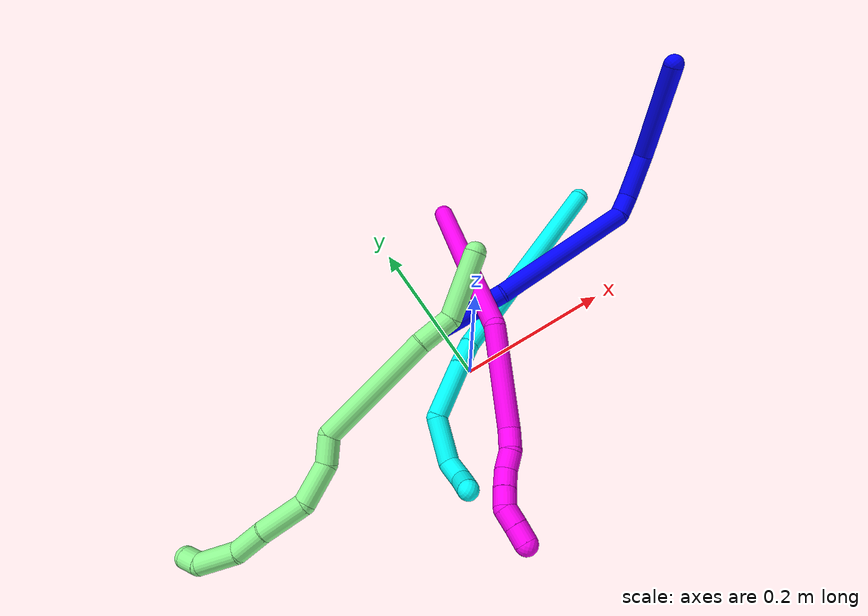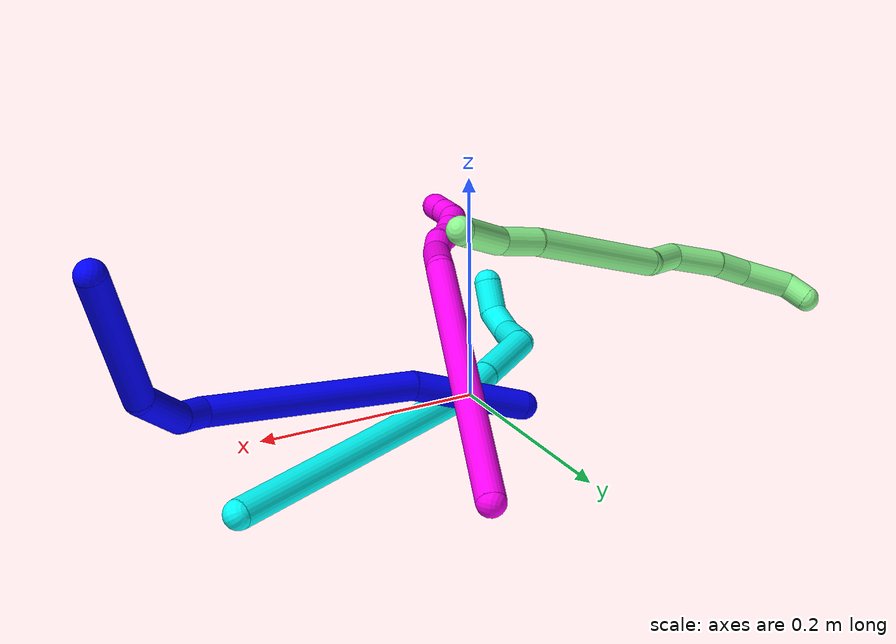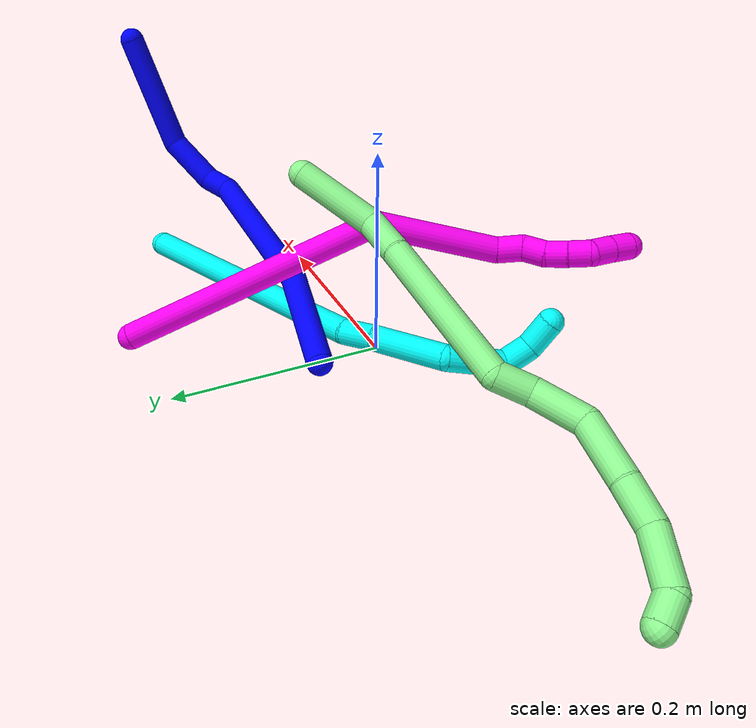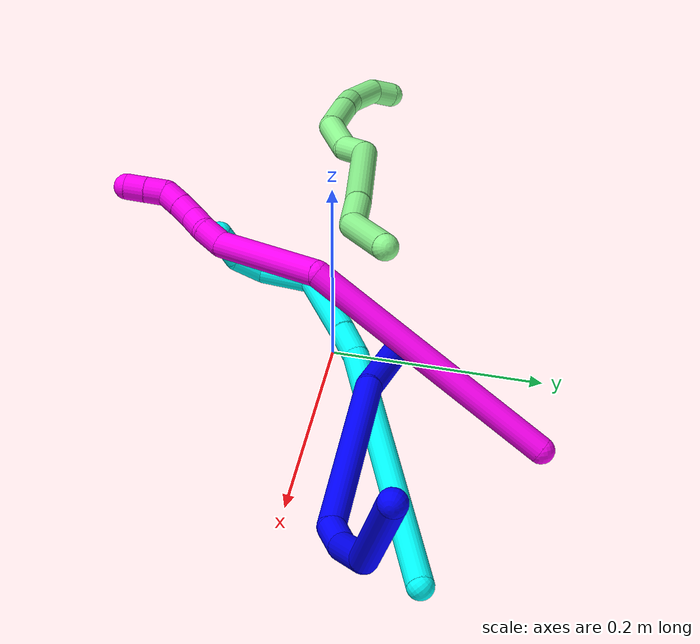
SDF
<sdf version="1.7">
 <world name="default">
  <model name="1">
   <static>0</static>
   <link name="1">
    <collision name="collision-cylinder-e_1_1_4">
     <pose>0.001693 -0.005132 0.052135 0.098112 0.032298 0.001586</pose>
     <geometry><cylinder><radius>0.0125</radius><length>0.104828</length></cylinder></geometry>
     <surface>
      <friction><ode><mu>1.16</mu><mu2>1.16</mu2><slip1>0</slip1><slip2>0</slip2></ode></friction>
      <contact><ode><kp>1e+06</kp><kd>1</kd><max_vel>0</max_vel><min_depth>0.001</min_depth></ode></contact>
     </surface>
    </collision>
    <visual name="visual-cylinder-e_1_1_4">
     <pose>0.001693 -0.005132 0.052135 0.098112 0.032298 0.001586</pose>
     <geometry><cylinder><radius>0.0125</radius><length>0.104828</length></cylinder></geometry>
     <material><ambient>0 0 1 1</ambient></material>
    </visual>
    <collision name="collision-cylinder-e_2_4_5">
     <pose>0.027674 -0.004273 0.194842 -0.066037 0.26146 -0.008686</pose>
     <geometry><cylinder><radius>0.0125</radius><length>0.187927</length></cylinder></geometry>
     <surface>
      <friction><ode><mu>1.16</mu><mu2>1.16</mu2><slip1>0</slip1><slip2>0</slip2></ode></friction>
      <contact><ode><kp>1e+06</kp><kd>1</kd><max_vel>0</max_vel><min_depth>0.001</min_depth></ode></contact>
     </surface>
    </collision>
    <visual name="visual-cylinder-e_2_4_5">
     <pose>0.027674 -0.004273 0.194842 -0.066037 0.26146 -0.008686</pose>
     <geometry><cylinder><radius>0.0125</radius><length>0.187927</length></cylinder></geometry>
     <material><ambient>0 0 1 1</ambient></material>
    </visual>
    <collision name="collision-cylinder-e_3_5_6">
     <pose>0.053364 0.009244 0.297232 -0.567129 0.099658 -0.029064</pose>
     <geometry><cylinder><radius>0.0125</radius><length>0.028162</length></cylinder></geometry>
     <surface>
      <friction><ode><mu>1.16</mu><mu2>1.16</mu2><slip1>0</slip1><slip2>0</slip2></ode></friction>
      <contact><ode><kp>1e+06</kp><kd>1</kd><max_vel>0</max_vel><min_depth>0.001</min_depth></ode></contact>
     </surface>
    </collision>
    <visual name="visual-cylinder-e_3_5_6">
     <pose>0.053364 0.009244 0.297232 -0.567129 0.099658 -0.029064</pose>
     <geometry><cylinder><radius>0.0125</radius><length>0.028162</length></cylinder></geometry>
     <material><ambient>0 0 1 1</ambient></material>
    </visual>
    <collision name="collision-cylinder-e_4_6_7">
     <pose>0.045604 0.030173 0.332354 -0.521902 -0.328405 0.088437</pose>
     <geometry><cylinder><radius>0.0125</radius><length>0.056804</length></cylinder></geometry>
     <surface>
      <friction><ode><mu>1.16</mu><mu2>1.16</mu2><slip1>0</slip1><slip2>0</slip2></ode></friction>
      <contact><ode><kp>1e+06</kp><kd>1</kd><max_vel>0</max_vel><min_depth>0.001</min_depth></ode></contact>
     </surface>
    </collision>
    <visual name="visual-cylinder-e_4_6_7">
     <pose>0.045604 0.030173 0.332354 -0.521902 -0.328405 0.088437</pose>
     <geometry><cylinder><radius>0.0125</radius><length>0.056804</length></cylinder></geometry>
     <material><ambient>0 0 1 1</ambient></material>
    </visual>
    <collision name="collision-cylinder-e_5_7_2">
     <pose>-0.010068 0.058386 0.392474 -0.382494 -0.864465 0.178165</pose>
     <geometry><cylinder><radius>0.0125</radius><length>0.122279</length></cylinder></geometry>
     <surface>
      <friction><ode><mu>1.16</mu><mu2>1.16</mu2><slip1>0</slip1><slip2>0</slip2></ode></friction>
      <contact><ode><kp>1e+06</kp><kd>1</kd><max_vel>0</max_vel><min_depth>0.001</min_depth></ode></contact>
     </surface>
    </collision>
    <visual name="visual-cylinder-e_5_7_2">
     <pose>-0.010068 0.058386 0.392474 -0.382494 -0.864465 0.178165</pose>
     <geometry><cylinder><radius>0.0125</radius><length>0.122279</length></cylinder></geometry>
     <material><ambient>0 0 1 1</ambient></material>
    </visual>
    <collision name="collision-sphere-2">
     <pose>-0.05658 0.073197 0.429289 0 -0 0</pose>
     <geometry><sphere><radius>0.0125</radius></sphere></geometry>
     <surface>
      <friction><ode><mu>1.16</mu><mu2>1.16</mu2><slip1>0</slip1><slip2>0</slip2></ode></friction>
      <contact><ode><kp>1e+06</kp><kd>1</kd><max_vel>0</max_vel><min_depth>0.001</min_depth></ode></contact>
     </surface>
    </collision>
    <visual name="visual-sphere-2">
     <pose>-0.05658 0.073197 0.429289 0 -0 0</pose>
     <geometry><sphere><radius>0.0125</radius></sphere></geometry>
     <material><ambient>0 0 1 1</ambient></material>
    </visual>
    <collision name="collision-sphere-7">
     <pose>0.036443 0.043576 0.355659 0 -0 0</pose>
     <geometry><sphere><radius>0.0125</radius></sphere></geometry>
     <surface>
      <friction><ode><mu>1.16</mu><mu2>1.16</mu2><slip1>0</slip1><slip2>0</slip2></ode></friction>
      <contact><ode><kp>1e+06</kp><kd>1</kd><max_vel>0</max_vel><min_depth>0.001</min_depth></ode></contact>
     </surface>
    </collision>
    <visual name="visual-sphere-7">
     <pose>0.036443 0.043576 0.355659 0 -0 0</pose>
     <geometry><sphere><radius>0.0125</radius></sphere></geometry>
     <material><ambient>0 0 1 1</ambient></material>
    </visual>
    <collision name="collision-sphere-6">
     <pose>0.054765 0.01677 0.309049 0 -0 0</pose>
     <geometry><sphere><radius>0.0125</radius></sphere></geometry>
     <surface>
      <friction><ode><mu>1.16</mu><mu2>1.16</mu2><slip1>0</slip1><slip2>0</slip2></ode></friction>
      <contact><ode><kp>1e+06</kp><kd>1</kd><max_vel>0</max_vel><min_depth>0.001</min_depth></ode></contact>
     </surface>
    </collision>
    <visual name="visual-sphere-6">
     <pose>0.054765 0.01677 0.309049 0 -0 0</pose>
     <geometry><sphere><radius>0.0125</radius></sphere></geometry>
     <material><ambient>0 0 1 1</ambient></material>
    </visual>
    <collision name="collision-sphere-5">
     <pose>0.051963 0.001717 0.285414 0 -0 0</pose>
     <geometry><sphere><radius>0.0125</radius></sphere></geometry>
     <surface>
      <friction><ode><mu>1.16</mu><mu2>1.16</mu2><slip1>0</slip1><slip2>0</slip2></ode></friction>
      <contact><ode><kp>1e+06</kp><kd>1</kd><max_vel>0</max_vel><min_depth>0.001</min_depth></ode></contact>
     </surface>
    </collision>
    <visual name="visual-sphere-5">
     <pose>0.051963 0.001717 0.285414 0 -0 0</pose>
     <geometry><sphere><radius>0.0125</radius></sphere></geometry>
     <material><ambient>0 0 1 1</ambient></material>
    </visual>
    <collision name="collision-sphere-1">
     <geometry><sphere><radius>0.0125</radius></sphere></geometry>
     <surface>
      <friction><ode><mu>1.16</mu><mu2>1.16</mu2><slip1>0</slip1><slip2>0</slip2></ode></friction>
      <contact><ode><kp>1e+06</kp><kd>1</kd><max_vel>0</max_vel><min_depth>0.001</min_depth></ode></contact>
     </surface>
    </collision>
    <visual name="visual-sphere-1">
     <geometry><sphere><radius>0.0125</radius></sphere></geometry>
     <material><ambient>0 0 1 1</ambient></material>
    </visual>
    <collision name="collision-sphere-4">
     <pose>0.003385 -0.010263 0.10427 0 -0 0</pose>
     <geometry><sphere><radius>0.0125</radius></sphere></geometry>
     <surface>
      <friction><ode><mu>1.16</mu><mu2>1.16</mu2><slip1>0</slip1><slip2>0</slip2></ode></friction>
      <contact><ode><kp>1e+06</kp><kd>1</kd><max_vel>0</max_vel><min_depth>0.001</min_depth></ode></contact>
     </surface>
    </collision>
    <visual name="visual-sphere-4">
     <pose>0.003385 -0.010263 0.10427 0 -0 0</pose>
     <geometry><sphere><radius>0.0125</radius></sphere></geometry>
     <material><ambient>0 0 1 1</ambient></material>
    </visual>
    <inertial>
     <pose>0.016481 0.015545 0.234644 0 -0 0</pose>
     <mass>0.5</mass>
     <inertia>
      <ixx>0.000772</ixx>
      <ixy>0</ixy>
      <ixz>0</ixz>
      <iyy>0.000849</iyy>
      <iyz>0</iyz>
      <izz>-6.3e-05</izz>
     </inertia>
    </inertial>
   </link>
   <pose>-0.016242 0.064601 0.011484 -0.009917 1.20515 -0.042322</pose>
  </model>
  <model name="3">
   <static>0</static>
   <link name="3">
    <collision name="collision-cylinder-e_1_1_4">
     <pose>-0.116861 -0.06996 0.028282 1.18663 -0.997431 -0.703978</pose>
     <geometry><cylinder><radius>0.0125</radius><length>0.278215</length></cylinder></geometry>
     <surface>
      <friction><ode><mu>1.16</mu><mu2>1.16</mu2><slip1>0</slip1><slip2>0</slip2></ode></friction>
      <contact><ode><kp>1e+06</kp><kd>1</kd><max_vel>0</max_vel><min_depth>0.001</min_depth></ode></contact>
     </surface>
    </collision>
    <visual name="visual-cylinder-e_1_1_4">
     <pose>-0.116861 -0.06996 0.028282 1.18663 -0.997431 -0.703978</pose>
     <geometry><cylinder><radius>0.0125</radius><length>0.278215</length></cylinder></geometry>
     <material><ambient>0.003922 1 0.996078 1</ambient></material>
    </visual>
    <collision name="collision-cylinder-e_2_4_5">
     <pose>-0.245951 -0.150933 0.057922 1.44806 -0.833896 -0.746554</pose>
     <geometry><cylinder><radius>0.0125</radius><length>0.033025</length></cylinder></geometry>
     <surface>
      <friction><ode><mu>1.16</mu><mu2>1.16</mu2><slip1>0</slip1><slip2>0</slip2></ode></friction>
      <contact><ode><kp>1e+06</kp><kd>1</kd><max_vel>0</max_vel><min_depth>0.001</min_depth></ode></contact>
     </surface>
    </collision>
    <visual name="visual-cylinder-e_2_4_5">
     <pose>-0.245951 -0.150933 0.057922 1.44806 -0.833896 -0.746554</pose>
     <geometry><cylinder><radius>0.0125</radius><length>0.033025</length></cylinder></geometry>
     <material><ambient>0.003922 1 0.996078 1</ambient></material>
    </visual>
    <collision name="collision-cylinder-e_3_5_6">
     <pose>-0.286999 -0.185154 0.0606 1.51399 -0.89206 -0.848617</pose>
     <geometry><cylinder><radius>0.0125</radius><length>0.074051</length></cylinder></geometry>
     <surface>
      <friction><ode><mu>1.16</mu><mu2>1.16</mu2><slip1>0</slip1><slip2>0</slip2></ode></friction>
      <contact><ode><kp>1e+06</kp><kd>1</kd><max_vel>0</max_vel><min_depth>0.001</min_depth></ode></contact>
     </surface>
    </collision>
    <visual name="visual-cylinder-e_3_5_6">
     <pose>-0.286999 -0.185154 0.0606 1.51399 -0.89206 -0.848617</pose>
     <geometry><cylinder><radius>0.0125</radius><length>0.074051</length></cylinder></geometry>
     <material><ambient>0.003922 1 0.996078 1</ambient></material>
    </visual>
    <collision name="collision-cylinder-e_4_6_7">
     <pose>-0.330654 -0.224596 0.04533 2.367 -0.568701 -1.24347</pose>
     <geometry><cylinder><radius>0.0125</radius><length>0.055096</length></cylinder></geometry>
     <surface>
      <friction><ode><mu>1.16</mu><mu2>1.16</mu2><slip1>0</slip1><slip2>0</slip2></ode></friction>
      <contact><ode><kp>1e+06</kp><kd>1</kd><max_vel>0</max_vel><min_depth>0.001</min_depth></ode></contact>
     </surface>
    </collision>
    <visual name="visual-cylinder-e_4_6_7">
     <pose>-0.330654 -0.224596 0.04533 2.367 -0.568701 -1.24347</pose>
     <geometry><cylinder><radius>0.0125</radius><length>0.055096</length></cylinder></geometry>
     <material><ambient>0.003922 1 0.996078 1</ambient></material>
    </visual>
    <collision name="collision-cylinder-e_5_7_8">
     <pose>-0.345427 -0.253949 0.02257 2.01042 0.004339 0.006835</pose>
     <geometry><cylinder><radius>0.0125</radius><length>0.028992</length></cylinder></geometry>
     <surface>
      <friction><ode><mu>1.16</mu><mu2>1.16</mu2><slip1>0</slip1><slip2>0</slip2></ode></friction>
      <contact><ode><kp>1e+06</kp><kd>1</kd><max_vel>0</max_vel><min_depth>0.001</min_depth></ode></contact>
     </surface>
    </collision>
    <visual name="visual-cylinder-e_5_7_8">
     <pose>-0.345427 -0.253949 0.02257 2.01042 0.004339 0.006835</pose>
     <geometry><cylinder><radius>0.0125</radius><length>0.028992</length></cylinder></geometry>
     <material><ambient>0.003922 1 0.996078 1</ambient></material>
    </visual>
    <collision name="collision-cylinder-e_6_8_2">
     <pose>-0.342583 -0.282064 0.017723 1.48285 0.182646 0.167325</pose>
     <geometry><cylinder><radius>0.0125</radius><length>0.030621</length></cylinder></geometry>
     <surface>
      <friction><ode><mu>1.16</mu><mu2>1.16</mu2><slip1>0</slip1><slip2>0</slip2></ode></friction>
      <contact><ode><kp>1e+06</kp><kd>1</kd><max_vel>0</max_vel><min_depth>0.001</min_depth></ode></contact>
     </surface>
    </collision>
    <visual name="visual-cylinder-e_6_8_2">
     <pose>-0.342583 -0.282064 0.017723 1.48285 0.182646 0.167325</pose>
     <geometry><cylinder><radius>0.0125</radius><length>0.030621</length></cylinder></geometry>
     <material><ambient>0.003922 1 0.996078 1</ambient></material>
    </visual>
    <collision name="collision-sphere-2">
     <pose>-0.339803 -0.297061 0.019046 0 -0 0</pose>
     <geometry><sphere><radius>0.0125</radius></sphere></geometry>
     <surface>
      <friction><ode><mu>1.16</mu><mu2>1.16</mu2><slip1>0</slip1><slip2>0</slip2></ode></friction>
      <contact><ode><kp>1e+06</kp><kd>1</kd><max_vel>0</max_vel><min_depth>0.001</min_depth></ode></contact>
     </surface>
    </collision>
    <visual name="visual-sphere-2">
     <pose>-0.339803 -0.297061 0.019046 0 -0 0</pose>
     <geometry><sphere><radius>0.0125</radius></sphere></geometry>
     <material><ambient>0.003922 1 0.996078 1</ambient></material>
    </visual>
    <collision name="collision-sphere-4">
     <pose>-0.233723 -0.13992 0.056563 0 -0 0</pose>
     <geometry><sphere><radius>0.0125</radius></sphere></geometry>
     <surface>
      <friction><ode><mu>1.16</mu><mu2>1.16</mu2><slip1>0</slip1><slip2>0</slip2></ode></friction>
      <contact><ode><kp>1e+06</kp><kd>1</kd><max_vel>0</max_vel><min_depth>0.001</min_depth></ode></contact>
     </surface>
    </collision>
    <visual name="visual-sphere-4">
     <pose>-0.233723 -0.13992 0.056563 0 -0 0</pose>
     <geometry><sphere><radius>0.0125</radius></sphere></geometry>
     <material><ambient>0.003922 1 0.996078 1</ambient></material>
    </visual>
    <collision name="collision-sphere-1">
     <geometry><sphere><radius>0.0125</radius></sphere></geometry>
     <surface>
      <friction><ode><mu>1.16</mu><mu2>1.16</mu2><slip1>0</slip1><slip2>0</slip2></ode></friction>
      <contact><ode><kp>1e+06</kp><kd>1</kd><max_vel>0</max_vel><min_depth>0.001</min_depth></ode></contact>
     </surface>
    </collision>
    <visual name="visual-sphere-1">
     <geometry><sphere><radius>0.0125</radius></sphere></geometry>
     <material><ambient>0.003922 1 0.996078 1</ambient></material>
    </visual>
    <collision name="collision-sphere-8">
     <pose>-0.345364 -0.267067 0.016401 0 -0 0</pose>
     <geometry><sphere><radius>0.0125</radius></sphere></geometry>
     <surface>
      <friction><ode><mu>1.16</mu><mu2>1.16</mu2><slip1>0</slip1><slip2>0</slip2></ode></friction>
      <contact><ode><kp>1e+06</kp><kd>1</kd><max_vel>0</max_vel><min_depth>0.001</min_depth></ode></contact>
     </surface>
    </collision>
    <visual name="visual-sphere-8">
     <pose>-0.345364 -0.267067 0.016401 0 -0 0</pose>
     <geometry><sphere><radius>0.0125</radius></sphere></geometry>
     <material><ambient>0.003922 1 0.996078 1</ambient></material>
    </visual>
    <collision name="collision-sphere-5">
     <pose>-0.25818 -0.161946 0.05928 0 -0 0</pose>
     <geometry><sphere><radius>0.0125</radius></sphere></geometry>
     <surface>
      <friction><ode><mu>1.16</mu><mu2>1.16</mu2><slip1>0</slip1><slip2>0</slip2></ode></friction>
      <contact><ode><kp>1e+06</kp><kd>1</kd><max_vel>0</max_vel><min_depth>0.001</min_depth></ode></contact>
     </surface>
    </collision>
    <visual name="visual-sphere-5">
     <pose>-0.25818 -0.161946 0.05928 0 -0 0</pose>
     <geometry><sphere><radius>0.0125</radius></sphere></geometry>
     <material><ambient>0.003922 1 0.996078 1</ambient></material>
    </visual>
    <collision name="collision-sphere-6">
     <pose>-0.315819 -0.208361 0.06192 0 -0 0</pose>
     <geometry><sphere><radius>0.0125</radius></sphere></geometry>
     <surface>
      <friction><ode><mu>1.16</mu><mu2>1.16</mu2><slip1>0</slip1><slip2>0</slip2></ode></friction>
      <contact><ode><kp>1e+06</kp><kd>1</kd><max_vel>0</max_vel><min_depth>0.001</min_depth></ode></contact>
     </surface>
    </collision>
    <visual name="visual-sphere-6">
     <pose>-0.315819 -0.208361 0.06192 0 -0 0</pose>
     <geometry><sphere><radius>0.0125</radius></sphere></geometry>
     <material><ambient>0.003922 1 0.996078 1</ambient></material>
    </visual>
    <collision name="collision-sphere-7">
     <pose>-0.34549 -0.240831 0.02874 0 -0 0</pose>
     <geometry><sphere><radius>0.0125</radius></sphere></geometry>
     <surface>
      <friction><ode><mu>1.16</mu><mu2>1.16</mu2><slip1>0</slip1><slip2>0</slip2></ode></friction>
      <contact><ode><kp>1e+06</kp><kd>1</kd><max_vel>0</max_vel><min_depth>0.001</min_depth></ode></contact>
     </surface>
    </collision>
    <visual name="visual-sphere-7">
     <pose>-0.34549 -0.240831 0.02874 0 -0 0</pose>
     <geometry><sphere><radius>0.0125</radius></sphere></geometry>
     <material><ambient>0.003922 1 0.996078 1</ambient></material>
    </visual>
    <inertial>
     <pose>-0.201221 -0.133067 0.035927 0 -0 0</pose>
     <mass>0.5</mass>
     <inertia>
      <ixx>8.3e-05</ixx>
      <ixy>0</ixy>
      <ixz>0</ixz>
      <iyy>0.000764</iyy>
      <iyz>0</iyz>
      <izz>0.002508</izz>
     </inertia>
    </inertial>
   </link>
   <pose>0.27206 0.134457 0.0115 -0.901314 -0.539129 0.248104</pose>
  </model>
  <model name="10">
   <static>0</static>
   <link name="10">
    <collision name="collision-cylinder-e_1_1_4">
     <pose>0.022661 -0.104882 -0.070084 2.15987 0.177752 0.3304</pose>
     <geometry><cylinder><radius>0.0125</radius><length>0.256325</length></cylinder></geometry>
     <surface>
      <friction><ode><mu>1.16</mu><mu2>1.16</mu2><slip1>0</slip1><slip2>0</slip2></ode></friction>
      <contact><ode><kp>1e+06</kp><kd>1</kd><max_vel>0</max_vel><min_depth>0.001</min_depth></ode></contact>
     </surface>
    </collision>
    <visual name="visual-cylinder-e_1_1_4">
     <pose>0.022661 -0.104882 -0.070084 2.15987 0.177752 0.3304</pose>
     <geometry><cylinder><radius>0.0125</radius><length>0.256325</length></cylinder></geometry>
     <material><ambient>1 0 0.964706 1</ambient></material>
    </visual>
    <collision name="collision-cylinder-e_2_4_5">
     <pose>0.017999 -0.25435 -0.165644 2.08992 -0.488993 -0.812026</pose>
     <geometry><cylinder><radius>0.0125</radius><length>0.116335</length></cylinder></geometry>
     <surface>
      <friction><ode><mu>1.16</mu><mu2>1.16</mu2><slip1>0</slip1><slip2>0</slip2></ode></friction>
      <contact><ode><kp>1e+06</kp><kd>1</kd><max_vel>0</max_vel><min_depth>0.001</min_depth></ode></contact>
     </surface>
    </collision>
    <visual name="visual-cylinder-e_2_4_5">
     <pose>0.017999 -0.25435 -0.165644 2.08992 -0.488993 -0.812026</pose>
     <geometry><cylinder><radius>0.0125</radius><length>0.116335</length></cylinder></geometry>
     <material><ambient>1 0 0.964706 1</ambient></material>
    </visual>
    <collision name="collision-cylinder-e_3_5_6">
     <pose>-0.010672 -0.310363 -0.195649 1.94815 -0.109229 -0.160603</pose>
     <geometry><cylinder><radius>0.0125</radius><length>0.024732</length></cylinder></geometry>
     <surface>
      <friction><ode><mu>1.16</mu><mu2>1.16</mu2><slip1>0</slip1><slip2>0</slip2></ode></friction>
      <contact><ode><kp>1e+06</kp><kd>1</kd><max_vel>0</max_vel><min_depth>0.001</min_depth></ode></contact>
     </surface>
    </collision>
    <visual name="visual-cylinder-e_3_5_6">
     <pose>-0.010672 -0.310363 -0.195649 1.94815 -0.109229 -0.160603</pose>
     <geometry><cylinder><radius>0.0125</radius><length>0.024732</length></cylinder></geometry>
     <material><ambient>1 0 0.964706 1</ambient></material>
    </visual>
    <collision name="collision-cylinder-e_4_6_7">
     <pose>-0.015802 -0.331783 -0.201143 1.66703 -0.36025 -0.395799</pose>
     <geometry><cylinder><radius>0.0125</radius><length>0.021456</length></cylinder></geometry>
     <surface>
      <friction><ode><mu>1.16</mu><mu2>1.16</mu2><slip1>0</slip1><slip2>0</slip2></ode></friction>
      <contact><ode><kp>1e+06</kp><kd>1</kd><max_vel>0</max_vel><min_depth>0.001</min_depth></ode></contact>
     </surface>
    </collision>
    <visual name="visual-cylinder-e_4_6_7">
     <pose>-0.015802 -0.331783 -0.201143 1.66703 -0.36025 -0.395799</pose>
     <geometry><cylinder><radius>0.0125</radius><length>0.021456</length></cylinder></geometry>
     <material><ambient>1 0 0.964706 1</ambient></material>
    </visual>
    <collision name="collision-cylinder-e_5_7_8">
     <pose>-0.021042 -0.351479 -0.204744 1.83611 -0.144005 -0.188125</pose>
     <geometry><cylinder><radius>0.0125</radius><length>0.020319</length></cylinder></geometry>
     <surface>
      <friction><ode><mu>1.16</mu><mu2>1.16</mu2><slip1>0</slip1><slip2>0</slip2></ode></friction>
      <contact><ode><kp>1e+06</kp><kd>1</kd><max_vel>0</max_vel><min_depth>0.001</min_depth></ode></contact>
     </surface>
    </collision>
    <visual name="visual-cylinder-e_5_7_8">
     <pose>-0.021042 -0.351479 -0.204744 1.83611 -0.144005 -0.188125</pose>
     <geometry><cylinder><radius>0.0125</radius><length>0.020319</length></cylinder></geometry>
     <material><ambient>1 0 0.964706 1</ambient></material>
    </visual>
    <collision name="collision-cylinder-e_6_8_9">
     <pose>-0.023878 -0.370849 -0.210796 1.91034 -0.133619 -0.188629</pose>
     <geometry><cylinder><radius>0.0125</radius><length>0.02069</length></cylinder></geometry>
     <surface>
      <friction><ode><mu>1.16</mu><mu2>1.16</mu2><slip1>0</slip1><slip2>0</slip2></ode></friction>
      <contact><ode><kp>1e+06</kp><kd>1</kd><max_vel>0</max_vel><min_depth>0.001</min_depth></ode></contact>
     </surface>
    </collision>
    <visual name="visual-cylinder-e_6_8_9">
     <pose>-0.023878 -0.370849 -0.210796 1.91034 -0.133619 -0.188629</pose>
     <geometry><cylinder><radius>0.0125</radius><length>0.02069</length></cylinder></geometry>
     <material><ambient>1 0 0.964706 1</ambient></material>
    </visual>
    <collision name="collision-cylinder-e_7_9_10">
     <pose>-0.027389 -0.386415 -0.222049 2.49656 -0.214075 -0.622172</pose>
     <geometry><cylinder><radius>0.0125</radius><length>0.020078</length></cylinder></geometry>
     <surface>
      <friction><ode><mu>1.16</mu><mu2>1.16</mu2><slip1>0</slip1><slip2>0</slip2></ode></friction>
      <contact><ode><kp>1e+06</kp><kd>1</kd><max_vel>0</max_vel><min_depth>0.001</min_depth></ode></contact>
     </surface>
    </collision>
    <visual name="visual-cylinder-e_7_9_10">
     <pose>-0.027389 -0.386415 -0.222049 2.49656 -0.214075 -0.622172</pose>
     <geometry><cylinder><radius>0.0125</radius><length>0.020078</length></cylinder></geometry>
     <material><ambient>1 0 0.964706 1</ambient></material>
    </visual>
    <collision name="collision-cylinder-e_8_10_2">
     <pose>-0.031916 -0.398384 -0.237507 2.46872 -0.241028 -0.66669</pose>
     <geometry><cylinder><radius>0.0125</radius><length>0.020064</length></cylinder></geometry>
     <surface>
      <friction><ode><mu>1.16</mu><mu2>1.16</mu2><slip1>0</slip1><slip2>0</slip2></ode></friction>
      <contact><ode><kp>1e+06</kp><kd>1</kd><max_vel>0</max_vel><min_depth>0.001</min_depth></ode></contact>
     </surface>
    </collision>
    <visual name="visual-cylinder-e_8_10_2">
     <pose>-0.031916 -0.398384 -0.237507 2.46872 -0.241028 -0.66669</pose>
     <geometry><cylinder><radius>0.0125</radius><length>0.020064</length></cylinder></geometry>
     <material><ambient>1 0 0.964706 1</ambient></material>
    </visual>
    <collision name="collision-sphere-2">
     <pose>-0.034311 -0.404456 -0.245126 0 -0 0</pose>
     <geometry><sphere><radius>0.0125</radius></sphere></geometry>
     <surface>
      <friction><ode><mu>1.16</mu><mu2>1.16</mu2><slip1>0</slip1><slip2>0</slip2></ode></friction>
      <contact><ode><kp>1e+06</kp><kd>1</kd><max_vel>0</max_vel><min_depth>0.001</min_depth></ode></contact>
     </surface>
    </collision>
    <visual name="visual-sphere-2">
     <pose>-0.034311 -0.404456 -0.245126 0 -0 0</pose>
     <geometry><sphere><radius>0.0125</radius></sphere></geometry>
     <material><ambient>1 0 0.964706 1</ambient></material>
    </visual>
    <collision name="collision-sphere-10">
     <pose>-0.029522 -0.392313 -0.229888 0 -0 0</pose>
     <geometry><sphere><radius>0.0125</radius></sphere></geometry>
     <surface>
      <friction><ode><mu>1.16</mu><mu2>1.16</mu2><slip1>0</slip1><slip2>0</slip2></ode></friction>
      <contact><ode><kp>1e+06</kp><kd>1</kd><max_vel>0</max_vel><min_depth>0.001</min_depth></ode></contact>
     </surface>
    </collision>
    <visual name="visual-sphere-10">
     <pose>-0.029522 -0.392313 -0.229888 0 -0 0</pose>
     <geometry><sphere><radius>0.0125</radius></sphere></geometry>
     <material><ambient>1 0 0.964706 1</ambient></material>
    </visual>
    <collision name="collision-sphere-9">
     <pose>-0.025256 -0.380517 -0.21421 0 -0 0</pose>
     <geometry><sphere><radius>0.0125</radius></sphere></geometry>
     <surface>
      <friction><ode><mu>1.16</mu><mu2>1.16</mu2><slip1>0</slip1><slip2>0</slip2></ode></friction>
      <contact><ode><kp>1e+06</kp><kd>1</kd><max_vel>0</max_vel><min_depth>0.001</min_depth></ode></contact>
     </surface>
    </collision>
    <visual name="visual-sphere-9">
     <pose>-0.025256 -0.380517 -0.21421 0 -0 0</pose>
     <geometry><sphere><radius>0.0125</radius></sphere></geometry>
     <material><ambient>1 0 0.964706 1</ambient></material>
    </visual>
    <collision name="collision-sphere-4">
     <pose>0.045323 -0.209764 -0.140168 0 -0 0</pose>
     <geometry><sphere><radius>0.0125</radius></sphere></geometry>
     <surface>
      <friction><ode><mu>1.16</mu><mu2>1.16</mu2><slip1>0</slip1><slip2>0</slip2></ode></friction>
      <contact><ode><kp>1e+06</kp><kd>1</kd><max_vel>0</max_vel><min_depth>0.001</min_depth></ode></contact>
     </surface>
    </collision>
    <visual name="visual-sphere-4">
     <pose>0.045323 -0.209764 -0.140168 0 -0 0</pose>
     <geometry><sphere><radius>0.0125</radius></sphere></geometry>
     <material><ambient>1 0 0.964706 1</ambient></material>
    </visual>
    <collision name="collision-sphere-1">
     <geometry><sphere><radius>0.0125</radius></sphere></geometry>
     <surface>
      <friction><ode><mu>1.16</mu><mu2>1.16</mu2><slip1>0</slip1><slip2>0</slip2></ode></friction>
      <contact><ode><kp>1e+06</kp><kd>1</kd><max_vel>0</max_vel><min_depth>0.001</min_depth></ode></contact>
     </surface>
    </collision>
    <visual name="visual-sphere-1">
     <geometry><sphere><radius>0.0125</radius></sphere></geometry>
     <material><ambient>1 0 0.964706 1</ambient></material>
    </visual>
    <collision name="collision-sphere-8">
     <pose>-0.0225 -0.361182 -0.207381 0 -0 0</pose>
     <geometry><sphere><radius>0.0125</radius></sphere></geometry>
     <surface>
      <friction><ode><mu>1.16</mu><mu2>1.16</mu2><slip1>0</slip1><slip2>0</slip2></ode></friction>
      <contact><ode><kp>1e+06</kp><kd>1</kd><max_vel>0</max_vel><min_depth>0.001</min_depth></ode></contact>
     </surface>
    </collision>
    <visual name="visual-sphere-8">
     <pose>-0.0225 -0.361182 -0.207381 0 -0 0</pose>
     <geometry><sphere><radius>0.0125</radius></sphere></geometry>
     <material><ambient>1 0 0.964706 1</ambient></material>
    </visual>
    <collision name="collision-sphere-5">
     <pose>-0.009324 -0.298936 -0.19112 0 -0 0</pose>
     <geometry><sphere><radius>0.0125</radius></sphere></geometry>
     <surface>
      <friction><ode><mu>1.16</mu><mu2>1.16</mu2><slip1>0</slip1><slip2>0</slip2></ode></friction>
      <contact><ode><kp>1e+06</kp><kd>1</kd><max_vel>0</max_vel><min_depth>0.001</min_depth></ode></contact>
     </surface>
    </collision>
    <visual name="visual-sphere-5">
     <pose>-0.009324 -0.298936 -0.19112 0 -0 0</pose>
     <geometry><sphere><radius>0.0125</radius></sphere></geometry>
     <material><ambient>1 0 0.964706 1</ambient></material>
    </visual>
    <collision name="collision-sphere-6">
     <pose>-0.01202 -0.32179 -0.200179 0 -0 0</pose>
     <geometry><sphere><radius>0.0125</radius></sphere></geometry>
     <surface>
      <friction><ode><mu>1.16</mu><mu2>1.16</mu2><slip1>0</slip1><slip2>0</slip2></ode></friction>
      <contact><ode><kp>1e+06</kp><kd>1</kd><max_vel>0</max_vel><min_depth>0.001</min_depth></ode></contact>
     </surface>
    </collision>
    <visual name="visual-sphere-6">
     <pose>-0.01202 -0.32179 -0.200179 0 -0 0</pose>
     <geometry><sphere><radius>0.0125</radius></sphere></geometry>
     <material><ambient>1 0 0.964706 1</ambient></material>
    </visual>
    <collision name="collision-sphere-7">
     <pose>-0.019584 -0.341776 -0.202108 0 -0 0</pose>
     <geometry><sphere><radius>0.0125</radius></sphere></geometry>
     <surface>
      <friction><ode><mu>1.16</mu><mu2>1.16</mu2><slip1>0</slip1><slip2>0</slip2></ode></friction>
      <contact><ode><kp>1e+06</kp><kd>1</kd><max_vel>0</max_vel><min_depth>0.001</min_depth></ode></contact>
     </surface>
    </collision>
    <visual name="visual-sphere-7">
     <pose>-0.019584 -0.341776 -0.202108 0 -0 0</pose>
     <geometry><sphere><radius>0.0125</radius></sphere></geometry>
     <material><ambient>1 0 0.964706 1</ambient></material>
    </visual>
    <inertial>
     <pose>0.010375 -0.20367 -0.128269 0 -0 0</pose>
     <mass>0.5</mass>
     <inertia>
      <ixx>0.001766</ixx>
      <ixy>0</ixy>
      <ixz>0</ixz>
      <iyy>-0.000355</iyy>
      <iyz>0</iyz>
      <izz>0.001066</izz>
     </inertia>
    </inertial>
   </link>
   <pose>0.096487 0.212036 0.012299 -1.80447 -1.29711 0.865397</pose>
  </model>
  <model name="13">
   <static>0</static>
   <link name="13">
    <collision name="collision-cylinder-e_1_1_4">
     <pose>-0.006032 0.007611 0.037248 -0.201572 -0.157364 0.015947</pose>
     <geometry><cylinder><radius>0.0125</radius><length>0.076986</length></cylinder></geometry>
     <surface>
      <friction><ode><mu>1.16</mu><mu2>1.16</mu2><slip1>0</slip1><slip2>0</slip2></ode></friction>
      <contact><ode><kp>1e+06</kp><kd>1</kd><max_vel>0</max_vel><min_depth>0.001</min_depth></ode></contact>
     </surface>
    </collision>
    <visual name="visual-cylinder-e_1_1_4">
     <pose>-0.006032 0.007611 0.037248 -0.201572 -0.157364 0.015947</pose>
     <geometry><cylinder><radius>0.0125</radius><length>0.076986</length></cylinder></geometry>
     <material><ambient>0.564706 0.984314 0.572549 1</ambient></material>
    </visual>
    <collision name="collision-cylinder-e_2_4_5">
     <pose>-0.024985 0.015066 0.091106 0.009424 -0.661056 -0.003234</pose>
     <geometry><cylinder><radius>0.0125</radius><length>0.042088</length></cylinder></geometry>
     <surface>
      <friction><ode><mu>1.16</mu><mu2>1.16</mu2><slip1>0</slip1><slip2>0</slip2></ode></friction>
      <contact><ode><kp>1e+06</kp><kd>1</kd><max_vel>0</max_vel><min_depth>0.001</min_depth></ode></contact>
     </surface>
    </collision>
    <visual name="visual-cylinder-e_2_4_5">
     <pose>-0.024985 0.015066 0.091106 0.009424 -0.661056 -0.003234</pose>
     <geometry><cylinder><radius>0.0125</radius><length>0.042088</length></cylinder></geometry>
     <material><ambient>0.564706 0.984314 0.572549 1</ambient></material>
    </visual>
    <collision name="collision-cylinder-e_3_5_6">
     <pose>-0.072754 0.011473 0.168737 0.056259 -0.518221 -0.014916</pose>
     <geometry><cylinder><radius>0.0125</radius><length>0.140711</length></cylinder></geometry>
     <surface>
      <friction><ode><mu>1.16</mu><mu2>1.16</mu2><slip1>0</slip1><slip2>0</slip2></ode></friction>
      <contact><ode><kp>1e+06</kp><kd>1</kd><max_vel>0</max_vel><min_depth>0.001</min_depth></ode></contact>
     </surface>
    </collision>
    <visual name="visual-cylinder-e_3_5_6">
     <pose>-0.072754 0.011473 0.168737 0.056259 -0.518221 -0.014916</pose>
     <geometry><cylinder><radius>0.0125</radius><length>0.140711</length></cylinder></geometry>
     <material><ambient>0.564706 0.984314 0.572549 1</ambient></material>
    </visual>
    <collision name="collision-cylinder-e_4_6_7">
     <pose>-0.106751 0.014166 0.244195 -0.401481 0.054288 -0.011049</pose>
     <geometry><cylinder><radius>0.0125</radius><length>0.031415</length></cylinder></geometry>
     <surface>
      <friction><ode><mu>1.16</mu><mu2>1.16</mu2><slip1>0</slip1><slip2>0</slip2></ode></friction>
      <contact><ode><kp>1e+06</kp><kd>1</kd><max_vel>0</max_vel><min_depth>0.001</min_depth></ode></contact>
     </surface>
    </collision>
    <visual name="visual-cylinder-e_4_6_7">
     <pose>-0.106751 0.014166 0.244195 -0.401481 0.054288 -0.011049</pose>
     <geometry><cylinder><radius>0.0125</radius><length>0.031415</length></cylinder></geometry>
     <material><ambient>0.564706 0.984314 0.572549 1</ambient></material>
    </visual>
    <collision name="collision-cylinder-e_5_7_8">
     <pose>-0.114495 0.027698 0.278922 -0.349863 -0.378777 0.06773</pose>
     <geometry><cylinder><radius>0.0125</radius><length>0.046491</length></cylinder></geometry>
     <surface>
      <friction><ode><mu>1.16</mu><mu2>1.16</mu2><slip1>0</slip1><slip2>0</slip2></ode></friction>
      <contact><ode><kp>1e+06</kp><kd>1</kd><max_vel>0</max_vel><min_depth>0.001</min_depth></ode></contact>
     </surface>
    </collision>
    <visual name="visual-cylinder-e_5_7_8">
     <pose>-0.114495 0.027698 0.278922 -0.349863 -0.378777 0.06773</pose>
     <geometry><cylinder><radius>0.0125</radius><length>0.046491</length></cylinder></geometry>
     <material><ambient>0.564706 0.984314 0.572549 1</ambient></material>
    </visual>
    <collision name="collision-cylinder-e_6_8_9">
     <pose>-0.139689 0.030934 0.320085 0.197065 -0.662304 -0.067947</pose>
     <geometry><cylinder><radius>0.0125</radius><length>0.053985</length></cylinder></geometry>
     <surface>
      <friction><ode><mu>1.16</mu><mu2>1.16</mu2><slip1>0</slip1><slip2>0</slip2></ode></friction>
      <contact><ode><kp>1e+06</kp><kd>1</kd><max_vel>0</max_vel><min_depth>0.001</min_depth></ode></contact>
     </surface>
    </collision>
    <visual name="visual-cylinder-e_6_8_9">
     <pose>-0.139689 0.030934 0.320085 0.197065 -0.662304 -0.067947</pose>
     <geometry><cylinder><radius>0.0125</radius><length>0.053985</length></cylinder></geometry>
     <material><ambient>0.564706 0.984314 0.572549 1</ambient></material>
    </visual>
    <collision name="collision-cylinder-e_7_9_10">
     <pose>-0.165672 0.023088 0.356329 0.2349 -0.53582 -0.064758</pose>
     <geometry><cylinder><radius>0.0125</radius><length>0.036762</length></cylinder></geometry>
     <surface>
      <friction><ode><mu>1.16</mu><mu2>1.16</mu2><slip1>0</slip1><slip2>0</slip2></ode></friction>
      <contact><ode><kp>1e+06</kp><kd>1</kd><max_vel>0</max_vel><min_depth>0.001</min_depth></ode></contact>
     </surface>
    </collision>
    <visual name="visual-cylinder-e_7_9_10">
     <pose>-0.165672 0.023088 0.356329 0.2349 -0.53582 -0.064758</pose>
     <geometry><cylinder><radius>0.0125</radius><length>0.036762</length></cylinder></geometry>
     <material><ambient>0.564706 0.984314 0.572549 1</ambient></material>
    </visual>
    <collision name="collision-cylinder-e_8_10_11">
     <pose>-0.191154 0.009699 0.386502 0.580584 -0.737938 -0.230006</pose>
     <geometry><cylinder><radius>0.0125</radius><length>0.047856</length></cylinder></geometry>
     <surface>
      <friction><ode><mu>1.16</mu><mu2>1.16</mu2><slip1>0</slip1><slip2>0</slip2></ode></friction>
      <contact><ode><kp>1e+06</kp><kd>1</kd><max_vel>0</max_vel><min_depth>0.001</min_depth></ode></contact>
     </surface>
    </collision>
    <visual name="visual-cylinder-e_8_10_11">
     <pose>-0.191154 0.009699 0.386502 0.580584 -0.737938 -0.230006</pose>
     <geometry><cylinder><radius>0.0125</radius><length>0.047856</length></cylinder></geometry>
     <material><ambient>0.564706 0.984314 0.572549 1</ambient></material>
    </visual>
    <collision name="collision-cylinder-e_9_11_2">
     <pose>-0.21317 -0.009882 0.404142 1.29085 -0.522748 -0.39753</pose>
     <geometry><cylinder><radius>0.0125</radius><length>0.023707</length></cylinder></geometry>
     <surface>
      <friction><ode><mu>1.16</mu><mu2>1.16</mu2><slip1>0</slip1><slip2>0</slip2></ode></friction>
      <contact><ode><kp>1e+06</kp><kd>1</kd><max_vel>0</max_vel><min_depth>0.001</min_depth></ode></contact>
     </surface>
    </collision>
    <visual name="visual-cylinder-e_9_11_2">
     <pose>-0.21317 -0.009882 0.404142 1.29085 -0.522748 -0.39753</pose>
     <geometry><cylinder><radius>0.0125</radius><length>0.023707</length></cylinder></geometry>
     <material><ambient>0.564706 0.984314 0.572549 1</ambient></material>
    </visual>
    <collision name="collision-sphere-2">
     <pose>-0.219088 -0.019753 0.40698 0 -0 0</pose>
     <geometry><sphere><radius>0.0125</radius></sphere></geometry>
     <surface>
      <friction><ode><mu>1.16</mu><mu2>1.16</mu2><slip1>0</slip1><slip2>0</slip2></ode></friction>
      <contact><ode><kp>1e+06</kp><kd>1</kd><max_vel>0</max_vel><min_depth>0.001</min_depth></ode></contact>
     </surface>
    </collision>
    <visual name="visual-sphere-2">
     <pose>-0.219088 -0.019753 0.40698 0 -0 0</pose>
     <geometry><sphere><radius>0.0125</radius></sphere></geometry>
     <material><ambient>0.564706 0.984314 0.572549 1</ambient></material>
    </visual>
    <collision name="collision-sphere-11">
     <pose>-0.207252 -1.2e-05 0.401305 0 -0 0</pose>
     <geometry><sphere><radius>0.0125</radius></sphere></geometry>
     <surface>
      <friction><ode><mu>1.16</mu><mu2>1.16</mu2><slip1>0</slip1><slip2>0</slip2></ode></friction>
      <contact><ode><kp>1e+06</kp><kd>1</kd><max_vel>0</max_vel><min_depth>0.001</min_depth></ode></contact>
     </surface>
    </collision>
    <visual name="visual-sphere-11">
     <pose>-0.207252 -1.2e-05 0.401305 0 -0 0</pose>
     <geometry><sphere><radius>0.0125</radius></sphere></geometry>
     <material><ambient>0.564706 0.984314 0.572549 1</ambient></material>
    </visual>
    <collision name="collision-sphere-10">
     <pose>-0.175056 0.019409 0.3717 0 -0 0</pose>
     <geometry><sphere><radius>0.0125</radius></sphere></geometry>
     <surface>
      <friction><ode><mu>1.16</mu><mu2>1.16</mu2><slip1>0</slip1><slip2>0</slip2></ode></friction>
      <contact><ode><kp>1e+06</kp><kd>1</kd><max_vel>0</max_vel><min_depth>0.001</min_depth></ode></contact>
     </surface>
    </collision>
    <visual name="visual-sphere-10">
     <pose>-0.175056 0.019409 0.3717 0 -0 0</pose>
     <geometry><sphere><radius>0.0125</radius></sphere></geometry>
     <material><ambient>0.564706 0.984314 0.572549 1</ambient></material>
    </visual>
    <collision name="collision-sphere-9">
     <pose>-0.156288 0.026766 0.340958 0 -0 0</pose>
     <geometry><sphere><radius>0.0125</radius></sphere></geometry>
     <surface>
      <friction><ode><mu>1.16</mu><mu2>1.16</mu2><slip1>0</slip1><slip2>0</slip2></ode></friction>
      <contact><ode><kp>1e+06</kp><kd>1</kd><max_vel>0</max_vel><min_depth>0.001</min_depth></ode></contact>
     </surface>
    </collision>
    <visual name="visual-sphere-9">
     <pose>-0.156288 0.026766 0.340958 0 -0 0</pose>
     <geometry><sphere><radius>0.0125</radius></sphere></geometry>
     <material><ambient>0.564706 0.984314 0.572549 1</ambient></material>
    </visual>
    <collision name="collision-sphere-4">
     <pose>-0.012065 0.015223 0.074495 0 -0 0</pose>
     <geometry><sphere><radius>0.0125</radius></sphere></geometry>
     <surface>
      <friction><ode><mu>1.16</mu><mu2>1.16</mu2><slip1>0</slip1><slip2>0</slip2></ode></friction>
      <contact><ode><kp>1e+06</kp><kd>1</kd><max_vel>0</max_vel><min_depth>0.001</min_depth></ode></contact>
     </surface>
    </collision>
    <visual name="visual-sphere-4">
     <pose>-0.012065 0.015223 0.074495 0 -0 0</pose>
     <geometry><sphere><radius>0.0125</radius></sphere></geometry>
     <material><ambient>0.564706 0.984314 0.572549 1</ambient></material>
    </visual>
    <collision name="collision-sphere-1">
     <geometry><sphere><radius>0.0125</radius></sphere></geometry>
     <surface>
      <friction><ode><mu>1.16</mu><mu2>1.16</mu2><slip1>0</slip1><slip2>0</slip2></ode></friction>
      <contact><ode><kp>1e+06</kp><kd>1</kd><max_vel>0</max_vel><min_depth>0.001</min_depth></ode></contact>
     </surface>
    </collision>
    <visual name="visual-sphere-1">
     <geometry><sphere><radius>0.0125</radius></sphere></geometry>
     <material><ambient>0.564706 0.984314 0.572549 1</ambient></material>
    </visual>
    <collision name="collision-sphere-8">
     <pose>-0.123091 0.035101 0.299211 0 -0 0</pose>
     <geometry><sphere><radius>0.0125</radius></sphere></geometry>
     <surface>
      <friction><ode><mu>1.16</mu><mu2>1.16</mu2><slip1>0</slip1><slip2>0</slip2></ode></friction>
      <contact><ode><kp>1e+06</kp><kd>1</kd><max_vel>0</max_vel><min_depth>0.001</min_depth></ode></contact>
     </surface>
    </collision>
    <visual name="visual-sphere-8">
     <pose>-0.123091 0.035101 0.299211 0 -0 0</pose>
     <geometry><sphere><radius>0.0125</radius></sphere></geometry>
     <material><ambient>0.564706 0.984314 0.572549 1</ambient></material>
    </visual>
    <collision name="collision-sphere-5">
     <pose>-0.037905 0.01491 0.107716 0 -0 0</pose>
     <geometry><sphere><radius>0.0125</radius></sphere></geometry>
     <surface>
      <friction><ode><mu>1.16</mu><mu2>1.16</mu2><slip1>0</slip1><slip2>0</slip2></ode></friction>
      <contact><ode><kp>1e+06</kp><kd>1</kd><max_vel>0</max_vel><min_depth>0.001</min_depth></ode></contact>
     </surface>
    </collision>
    <visual name="visual-sphere-5">
     <pose>-0.037905 0.01491 0.107716 0 -0 0</pose>
     <geometry><sphere><radius>0.0125</radius></sphere></geometry>
     <material><ambient>0.564706 0.984314 0.572549 1</ambient></material>
    </visual>
    <collision name="collision-sphere-6">
     <pose>-0.107604 0.008037 0.229758 0 -0 0</pose>
     <geometry><sphere><radius>0.0125</radius></sphere></geometry>
     <surface>
      <friction><ode><mu>1.16</mu><mu2>1.16</mu2><slip1>0</slip1><slip2>0</slip2></ode></friction>
      <contact><ode><kp>1e+06</kp><kd>1</kd><max_vel>0</max_vel><min_depth>0.001</min_depth></ode></contact>
     </surface>
    </collision>
    <visual name="visual-sphere-6">
     <pose>-0.107604 0.008037 0.229758 0 -0 0</pose>
     <geometry><sphere><radius>0.0125</radius></sphere></geometry>
     <material><ambient>0.564706 0.984314 0.572549 1</ambient></material>
    </visual>
    <collision name="collision-sphere-7">
     <pose>-0.105899 0.020295 0.258633 0 -0 0</pose>
     <geometry><sphere><radius>0.0125</radius></sphere></geometry>
     <surface>
      <friction><ode><mu>1.16</mu><mu2>1.16</mu2><slip1>0</slip1><slip2>0</slip2></ode></friction>
      <contact><ode><kp>1e+06</kp><kd>1</kd><max_vel>0</max_vel><min_depth>0.001</min_depth></ode></contact>
     </surface>
    </collision>
    <visual name="visual-sphere-7">
     <pose>-0.105899 0.020295 0.258633 0 -0 0</pose>
     <geometry><sphere><radius>0.0125</radius></sphere></geometry>
     <material><ambient>0.564706 0.984314 0.572549 1</ambient></material>
    </visual>
    <inertial>
     <pose>-0.096526 0.014632 0.21908 0 -0 0</pose>
     <mass>0.5</mass>
     <inertia>
      <ixx>0.00027</ixx>
      <ixy>0</ixy>
      <ixz>0</ixz>
      <iyy>0.000323</iyy>
      <iyz>0</iyz>
      <izz>0.000193</izz>
     </inertia>
    </inertial>
   </link>
   <pose>0.037642 0.05546 0.175668 2.33953 0.477192 -0.52386</pose>
  </model>
 </world>
</sdf>
